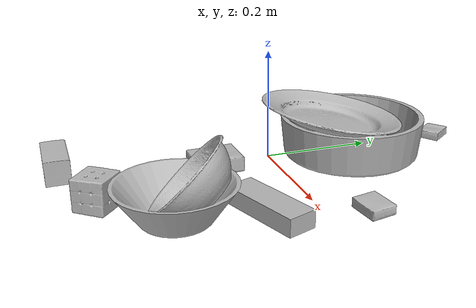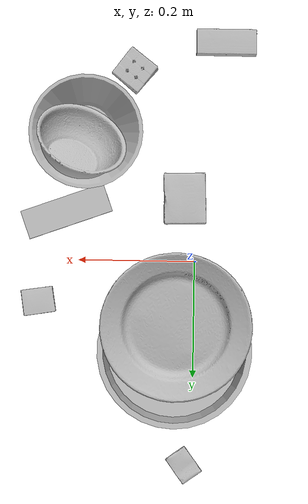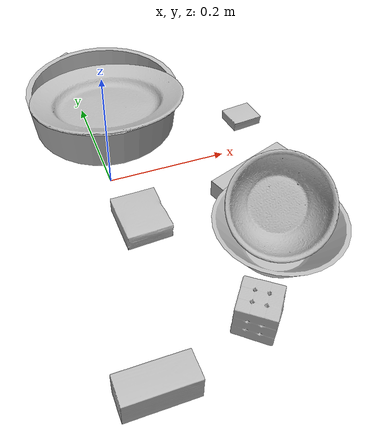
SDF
<sdf version="1.4">
  <world name="default">
    <light name="light1" type="point">
      <pose>0 0 1 0 0 0</pose>
      <diffuse>3 3 3 1</diffuse>
      <specular>3 3 3 1</specular>
    </light>
    <light name="light2" type="point">
      <pose>0 0.5 2 0 0 0</pose>
      <diffuse>1 1 1 1</diffuse>
      <specular>1 1 1 1</specular>
    </light>
    <light name="light3" type="point">
      <pose>0 0.5 2 0 0 0</pose>
      <diffuse>3 3 3 1</diffuse>
      <specular>3 3 3 1</specular>
    </light>
    <scene>
      <ambient>0.7 0.7 0.7</ambient>
    </scene>
    <model name="box1">
      <link name="link_box1">
        <collision name="default">
          <geometry>
            <mesh>
              <uri>model://pudding_box/collision_meshes/collision.obj</uri>
              <scale>0.5 0.5 0.5</scale>
            </mesh>
          </geometry>
          <surface>
            <friction>
              <ode>
                <mu>0.5</mu>
                <mu2>0.5</mu2>
              </ode>
            </friction>
          <contact>
        <ode>
            <max_vel>0</max_vel>
            <min_depth>0.0001</min_depth>
            <kp>1e8</kp>
        </ode>
    </contact></surface>
        </collision>
        <visual name="default">
          <geometry>
            <mesh>
              <uri>model://pudding_box/visual_meshes/visual.dae</uri>
              <scale>0.5 0.5 0.5</scale>
            </mesh>
          </geometry>
        </visual>
        <inertial>
          <mass>0.06043573096394539</mass>
          <pose>0.0002447410661261529 0.00040339428232982755 -0.0002594413817860186 0.005213102238104987 -0.006603800125102895 0.020079827017580043</pose>
          <inertia>
            <ixx>1.707987e-05</ixx>
            <iyy>1.1491458e-05</iyy>
            <izz>2.522289e-05</izz>
            <ixy>0</ixy>
            <ixz>0</ixz>
            <iyz>0</iyz>
          </inertia>
        </inertial>
      </link>
      <pose>0.2685868740081787 0.07216036319732666 0.009862903505563736 0.022348493661586415 -0.011391756930122149 1.7222252593122818</pose>
    </model>
    <model name="box11">
      <link name="link_box11">
        <collision name="default">
          <geometry>
            <mesh>
              <uri>model://wood_block/collision_meshes/collision.obj</uri>
              <scale>0.5 0.5 0.5</scale>
            </mesh>
          </geometry>
          <surface>
            <friction>
              <ode>
                <mu>0.5</mu>
                <mu2>0.5</mu2>
              </ode>
            </friction>
          <contact>
        <ode>
            <max_vel>0</max_vel>
            <min_depth>0.0001</min_depth>
            <kp>1e8</kp>
        </ode>
    </contact></surface>
        </collision>
        <visual name="default">
          <geometry>
            <mesh>
              <uri>model://wood_block/visual_meshes/visual.dae</uri>
              <scale>0.5 0.5 0.5</scale>
            </mesh>
          </geometry>
        </visual>
        <inertial>
          <mass>0.22556793689727783</mass>
          <pose>-2.9066577553749084e-06 -0.000285404734313488 0.00013204290007706732 -0.05220975528916272 -0.005192696013017626 -0.0068613779154948285</pose>
          <inertia>
            <ixx>7.5461e-05</ixx>
            <iyy>0.00023838133</iyy>
            <izz>0.00023748967</izz>
            <ixy>0</ixy>
            <ixz>0</ixz>
            <iyz>0</iyz>
          </inertia>
        </inertial>
      </link>
      <pose>-0.04821421578526497 -0.3779541552066803 0.02262927033007145 -0.005208430728227828 0.005718621828855665 -3.136426112345716</pose>
    </model>
    <model name="box2">
      <link name="link_box2">
        <collision name="default">
          <geometry>
            <mesh>
              <uri>model://jenga/collision_meshes/collision.obj</uri>
              <scale>1.0 1.0 1.0</scale>
            </mesh>
          </geometry>
          <surface>
            <friction>
              <ode>
                <mu>0.5</mu>
                <mu2>0.5</mu2>
              </ode>
            </friction>
          <contact>
        <ode>
            <max_vel>0</max_vel>
            <min_depth>0.0001</min_depth>
            <kp>1e8</kp>
        </ode>
    </contact></surface>
        </collision>
        <visual name="default">
          <geometry>
            <mesh>
              <uri>model://jenga/visual_meshes/visual.dae</uri>
              <scale>1.0 1.0 1.0</scale>
            </mesh>
          </geometry>
        </visual>
        <inertial>
          <mass>0.2534179985523224</mass>
          <pose>-2.502856091268768e-07 -0.00010250010382151231 -4.0923401684267446e-05 0.0 -7.342154049184251e-07 0.0</pose>
          <inertia>
            <ixx>7.012692e-05</ixx>
            <iyy>0.00047517804</iyy>
            <izz>0.000507293</izz>
            <ixy>0</ixy>
            <ixz>0</ixz>
            <iyz>0</iyz>
          </inertia>
        </inertial>
      </link>
      <pose>0.22224226593971252 -0.08313466608524323 0.014999995939433575 1.347688061747934e-08 -2.86353169255604e-09 -2.7963447372489876</pose>
    </model>
    <model name="box21">
      <link name="link_box21">
        <collision name="default">
          <geometry>
            <mesh>
              <uri>model://cracker_box/collision_meshes/collision.obj</uri>
              <scale>0.25 0.25 0.25</scale>
            </mesh>
          </geometry>
          <surface>
            <friction>
              <ode>
                <mu>0.5</mu>
                <mu2>0.5</mu2>
              </ode>
            </friction>
          <contact>
        <ode>
            <max_vel>0</max_vel>
            <min_depth>0.0001</min_depth>
            <kp>1e8</kp>
        </ode>
    </contact></surface>
        </collision>
        <visual name="default">
          <geometry>
            <mesh>
              <uri>model://cracker_box/visual_meshes/visual.dae</uri>
              <scale>0.25 0.25 0.25</scale>
            </mesh>
          </geometry>
        </visual>
        <inertial>
          <mass>0.04045860841870308</mass>
          <pose>0.0002366030093980953 6.358561950037256e-05 -0.0004257383698131889 -0.0003162076898946344 -0.011106488668808423 0.0025467959335197018</pose>
          <inertia>
            <ixx>6.4317906e-06</ixx>
            <iyy>1.062015e-05</iyy>
            <izz>1.5155927e-05</izz>
            <ixy>0</ixy>
            <ixz>0</ixz>
            <iyz>0</iyz>
          </inertia>
        </inertial>
      </link>
      <pose>0.013287822715938091 0.3513045907020569 0.009096027351915836 -0.014050461129556827 -0.005016631382860645 -0.9488674413972051</pose>
    </model>
    <model name="box3">
      <link name="link_box3">
        <collision name="default">
          <geometry>
            <mesh>
              <uri>model://rubiks_cube/collision_meshes/collision.obj</uri>
              <scale>1.0 1.0 1.0</scale>
            </mesh>
          </geometry>
          <surface>
            <friction>
              <ode>
                <mu>0.5</mu>
                <mu2>0.5</mu2>
              </ode>
            </friction>
          <contact>
        <ode>
            <max_vel>0</max_vel>
            <min_depth>0.0001</min_depth>
            <kp>1e8</kp>
        </ode>
    </contact></surface>
        </collision>
        <visual name="default">
          <geometry>
            <mesh>
              <uri>model://rubiks_cube/visual_meshes/visual.dae</uri>
              <scale>1.0 1.0 1.0</scale>
            </mesh>
          </geometry>
        </visual>
        <inertial>
          <mass>0.12779320776462555</mass>
          <pose>2.6721041649580002e-05 5.2569666877388954e-05 -7.264316082000732e-06 -0.054672129212199855 -0.09814057073985563 -0.03445704008669109</pose>
          <inertia>
            <ixx>7.061434e-05</ixx>
            <iyy>7.0285016e-05</iyy>
            <izz>7.119949e-05</izz>
            <ixy>0</ixy>
            <ixz>0</ixz>
            <iyz>0</iyz>
          </inertia>
        </inertial>
      </link>
      <pose>0.10852400958538055 -0.3267892003059387 0.028678936883807182 -5.523525837952845e-06 -1.7923504546421209e-06 -2.2383221717990454</pose>
    </model>
    <model name="box31">
      <link name="link_box31">
        <collision name="default">
          <geometry>
            <mesh>
              <uri>model://gelatin_box/collision_meshes/collision.obj</uri>
              <scale>1.0 1.0 1.0</scale>
            </mesh>
          </geometry>
          <surface>
            <friction>
              <ode>
                <mu>0.5</mu>
                <mu2>0.5</mu2>
              </ode>
            </friction>
          <contact>
        <ode>
            <max_vel>0</max_vel>
            <min_depth>0.0001</min_depth>
            <kp>1e8</kp>
        </ode>
    </contact></surface>
        </collision>
        <visual name="default">
          <geometry>
            <mesh>
              <uri>model://gelatin_box/visual_meshes/visual.dae</uri>
              <scale>1.0 1.0 1.0</scale>
            </mesh>
          </geometry>
        </visual>
        <inertial>
          <mass>0.20050984621047974</mass>
          <pose>0.0004319618456065655 0.00011156872642459348 -0.00036403213744051754 -0.0010503720853528096 -0.004755817758068365 0.016440559471334753</pose>
          <inertia>
            <ixx>0.00014154361</ixx>
            <iyy>0.00010110386</iyy>
            <izz>0.0002154609</izz>
            <ixy>0</ixy>
            <ixz>0</ixz>
            <iyz>0</iyz>
          </inertia>
        </inertial>
      </link>
      <pose>0.018730567768216133 -0.10851211845874786 0.015168312005698681 0.005596378241752584 -0.007303366533637951 0.01895236251300482</pose>
    </model>
    <model name="plate1">
      <link name="link_plate1">
        <collision name="default">
          <geometry>
            <mesh>
              <uri>model://pan_tefal/collision_meshes/collision.obj</uri>
              <scale>1.0 1.0 1.0</scale>
            </mesh>
          </geometry>
          <surface>
            <friction>
              <ode>
                <mu>0.5</mu>
                <mu2>0.5</mu2>
              </ode>
            </friction>
          <contact>
        <ode>
            <max_vel>0</max_vel>
            <min_depth>0.0001</min_depth>
            <kp>1e8</kp>
        </ode>
    </contact></surface>
        </collision>
        <visual name="default">
          <geometry>
            <mesh>
              <uri>model://pan_tefal/visual_meshes/visual.dae</uri>
              <scale>1.0 1.0 1.0</scale>
            </mesh>
          </geometry>
        </visual>
        <inertial>
          <mass>0.9166961908340454</mass>
          <pose>-0.00018002631259150803 3.279098018538207e-05 -0.00851493515074253 0.0008190256602529888 -0.0003301357182707761 -0.33185348708971</pose>
          <inertia>
            <ixx>0.006327908</ixx>
            <iyy>0.006368705</iyy>
            <izz>0.01164846</izz>
            <ixy>0</ixy>
            <ixz>0</ixz>
            <iyz>0</iyz>
          </inertia>
        </inertial>
      </link>
      <pose>0.03325001522898674 0.15376245975494385 0.038049422204494476 9.848597654468553e-05 2.442387717831549e-05 -1.15281763905606</pose>
    </model>
    <model name="bowl1">
      <link name="link_bowl1">
        <collision name="default">
          <geometry>
            <mesh>
              <uri>model://bowl_a/collision_meshes/collision.obj</uri>
              <scale>1.0 1.0 1.0</scale>
            </mesh>
          </geometry>
          <surface>
            <friction>
              <ode>
                <mu>0.5</mu>
                <mu2>0.5</mu2>
              </ode>
            </friction>
          <contact>
        <ode>
            <max_vel>0</max_vel>
            <min_depth>0.0001</min_depth>
            <kp>1e8</kp>
        </ode>
    </contact></surface>
        </collision>
        <visual name="default">
          <geometry>
            <mesh>
              <uri>model://bowl_a/visual_meshes/visual.dae</uri>
              <scale>1.0 1.0 1.0</scale>
            </mesh>
          </geometry>
        </visual>
        <inertial>
          <mass>0.44606471061706543</mass>
          <pose>0.0002786746481433511 4.7312179958680645e-05 -0.0013765294570475817 -0.0009805488171165768 -0.0010938123304380014 -0.19122487556540352</pose>
          <inertia>
            <ixx>0.0012699668</ixx>
            <iyy>0.001277764</iyy>
            <izz>0.0022586845</izz>
            <ixy>0</ixy>
            <ixz>0</ixz>
            <iyz>0</iyz>
          </inertia>
        </inertial>
      </link>
      <pose>0.19097287952899933 -0.2202342301607132 0.030383391305804253 -8.20754329352981e-06 -9.17664034982603e-07 -2.1060910356485</pose>
    </model>
    <model name="plate2">
      <link name="link_plate2">
        <collision name="default">
          <geometry>
            <mesh>
              <uri>model://plate/collision_meshes/collision.obj</uri>
              <scale>1.0 1.0 1.0</scale>
            </mesh>
          </geometry>
          <surface>
            <friction>
              <ode>
                <mu>0.5</mu>
                <mu2>0.5</mu2>
              </ode>
            </friction>
          <contact>
        <ode>
            <max_vel>0</max_vel>
            <min_depth>0.0001</min_depth>
            <kp>1e8</kp>
        </ode>
    </contact></surface>
        </collision>
        <visual name="default">
          <geometry>
            <mesh>
              <uri>model://plate/visual_meshes/visual.dae</uri>
              <scale>1.0 1.0 1.0</scale>
            </mesh>
          </geometry>
        </visual>
        <inertial>
          <mass>0.10088177025318146</mass>
          <pose>-0.0006044645560905337 0.0002782582596410066 -0.0010561994276940823 0.002218810424575964 -0.003225458488037908 0.4526011088858205</pose>
          <inertia>
            <ixx>0.00047192685</ixx>
            <iyy>0.00046741302</iyy>
            <izz>0.00092301855</izz>
            <ixy>0</ixy>
            <ixz>0</ixz>
            <iyz>0</iyz>
          </inertia>
        </inertial>
      </link>
      <pose>0.031118394806981087 0.11114373803138733 0.07699955254793167 0.11534242055597911 0.13019272049064398 2.2484458478428646</pose>
    </model>
    <model name="bowl2">
      <link name="link_bowl2">
        <collision name="default">
          <geometry>
            <mesh>
              <uri>model://bowl/collision_meshes/collision.obj</uri>
              <scale>1.0 1.0 1.0</scale>
            </mesh>
          </geometry>
          <surface>
            <friction>
              <ode>
                <mu>0.5</mu>
                <mu2>0.5</mu2>
              </ode>
            </friction>
          <contact>
        <ode>
            <max_vel>0</max_vel>
            <min_depth>0.0001</min_depth>
            <kp>1e8</kp>
        </ode>
    </contact></surface>
        </collision>
        <visual name="default">
          <geometry>
            <mesh>
              <uri>model://bowl/visual_meshes/visual.dae</uri>
              <scale>1.0 1.0 1.0</scale>
            </mesh>
          </geometry>
        </visual>
        <inertial>
          <mass>0.10570208728313446</mass>
          <pose>0.00020445376867428422 -0.00103021040558815 -0.000804263399913907 -0.015764090239829616 0.014546785988443214 0.7140402180265782</pose>
          <inertia>
            <ixx>0.00024280604</ixx>
            <iyy>0.0002373808</iyy>
            <izz>0.0004084832</izz>
            <ixy>0</ixy>
            <ixz>0</ixz>
            <iyz>0</iyz>
          </inertia>
        </inertial>
      </link>
      <pose>0.20522503554821014 -0.19052526354789734 0.05663246661424637 -0.09922091257547253 0.796806542152261 -2.156824750667334</pose>
    </model>
  <physics type="ode">
      <max_contacts>50</max_contacts>
      <ode>
        <solver>
          <type>quick</type>
          <iters>75</iters>
        </solver>
        <constraints>
          <contact_max_correcting_vel>0</contact_max_correcting_vel>
          <contact_surface_layer>0</contact_surface_layer>
        </constraints>
      </ode>
    </physics></world>
</sdf>
